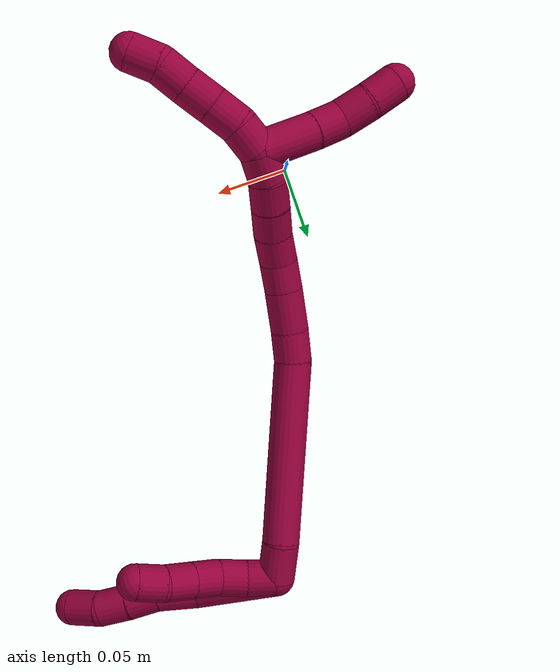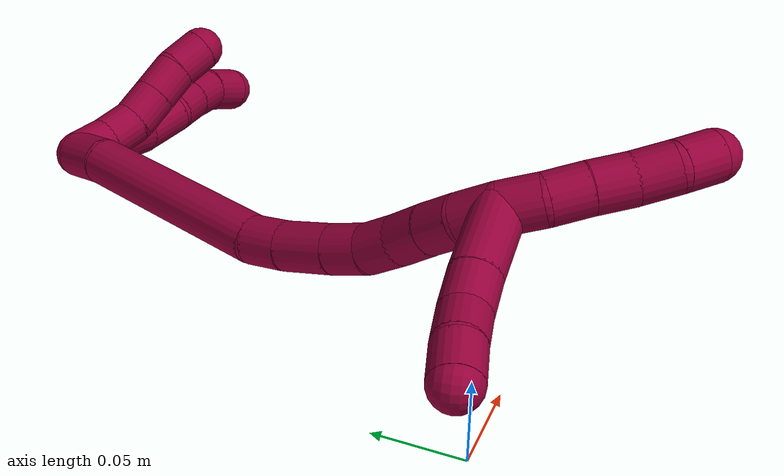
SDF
<sdf version="1.7">
 <world name="default">
  <model name="8">
   <static>0</static>
   <link name="8">
    <collision name="collision-cylinder-e_1_2_8">
     <pose>0.023667 0.01433 -0.007484 -2.05209 0.971529 -1.43352</pose>
     <geometry><cylinder><radius>0.0125</radius><length>0.057323</length></cylinder></geometry>
     <surface>
      <friction><ode><mu>1.16</mu><mu2>1.16</mu2><slip1>0</slip1><slip2>0</slip2></ode></friction>
      <contact><ode><kp>1e+06</kp><kd>1</kd><max_vel>0</max_vel><min_depth>0.001</min_depth></ode></contact>
     </surface>
    </collision>
    <visual name="visual-cylinder-e_1_2_8">
     <pose>0.023667 0.01433 -0.007484 -2.05209 0.971529 -1.43352</pose>
     <geometry><cylinder><radius>0.0125</radius><length>0.057323</length></cylinder></geometry>
     <material><ambient>0.584314 0 0.227451 1</ambient></material>
    </visual>
    <collision name="collision-cylinder-e_2_8_9">
     <pose>0.059833 0.032145 -0.020386 -2.5699 1.09485 -2.24308</pose>
     <geometry><cylinder><radius>0.0125</radius><length>0.028122</length></cylinder></geometry>
     <surface>
      <friction><ode><mu>1.16</mu><mu2>1.16</mu2><slip1>0</slip1><slip2>0</slip2></ode></friction>
      <contact><ode><kp>1e+06</kp><kd>1</kd><max_vel>0</max_vel><min_depth>0.001</min_depth></ode></contact>
     </surface>
    </collision>
    <visual name="visual-cylinder-e_2_8_9">
     <pose>0.059833 0.032145 -0.020386 -2.5699 1.09485 -2.24308</pose>
     <geometry><cylinder><radius>0.0125</radius><length>0.028122</length></cylinder></geometry>
     <material><ambient>0.584314 0 0.227451 1</ambient></material>
    </visual>
    <collision name="collision-cylinder-e_3_9_10">
     <pose>0.081977 0.039751 -0.027443 -1.94954 1.13992 -1.5141</pose>
     <geometry><cylinder><radius>0.0125</radius><length>0.021233</length></cylinder></geometry>
     <surface>
      <friction><ode><mu>1.16</mu><mu2>1.16</mu2><slip1>0</slip1><slip2>0</slip2></ode></friction>
      <contact><ode><kp>1e+06</kp><kd>1</kd><max_vel>0</max_vel><min_depth>0.001</min_depth></ode></contact>
     </surface>
    </collision>
    <visual name="visual-cylinder-e_3_9_10">
     <pose>0.081977 0.039751 -0.027443 -1.94954 1.13992 -1.5141</pose>
     <geometry><cylinder><radius>0.0125</radius><length>0.021233</length></cylinder></geometry>
     <material><ambient>0.584314 0 0.227451 1</ambient></material>
    </visual>
    <collision name="collision-cylinder-e_4_10_11">
     <pose>0.10106 0.048321 -0.03137 -2.04547 1.08322 -1.55624</pose>
     <geometry><cylinder><radius>0.0125</radius><length>0.021361</length></cylinder></geometry>
     <surface>
      <friction><ode><mu>1.16</mu><mu2>1.16</mu2><slip1>0</slip1><slip2>0</slip2></ode></friction>
      <contact><ode><kp>1e+06</kp><kd>1</kd><max_vel>0</max_vel><min_depth>0.001</min_depth></ode></contact>
     </surface>
    </collision>
    <visual name="visual-cylinder-e_4_10_11">
     <pose>0.10106 0.048321 -0.03137 -2.04547 1.08322 -1.55624</pose>
     <geometry><cylinder><radius>0.0125</radius><length>0.021361</length></cylinder></geometry>
     <material><ambient>0.584314 0 0.227451 1</ambient></material>
    </visual>
    <collision name="collision-cylinder-e_5_11_6">
     <pose>0.118114 0.059506 -0.037802 -2.12259 0.766764 -1.25057</pose>
     <geometry><cylinder><radius>0.0125</radius><length>0.02196</length></cylinder></geometry>
     <surface>
      <friction><ode><mu>1.16</mu><mu2>1.16</mu2><slip1>0</slip1><slip2>0</slip2></ode></friction>
      <contact><ode><kp>1e+06</kp><kd>1</kd><max_vel>0</max_vel><min_depth>0.001</min_depth></ode></contact>
     </surface>
    </collision>
    <visual name="visual-cylinder-e_5_11_6">
     <pose>0.118114 0.059506 -0.037802 -2.12259 0.766764 -1.25057</pose>
     <geometry><cylinder><radius>0.0125</radius><length>0.02196</length></cylinder></geometry>
     <material><ambient>0.584314 0 0.227451 1</ambient></material>
    </visual>
    <collision name="collision-cylinder-e_1_2_12">
     <pose>0.008597 0.002515 -0.004445 -2.62675 1.03473 -2.27499</pose>
     <geometry><cylinder><radius>0.0125</radius><length>0.02</length></cylinder></geometry>
     <surface>
      <friction><ode><mu>1.16</mu><mu2>1.16</mu2><slip1>0</slip1><slip2>0</slip2></ode></friction>
      <contact><ode><kp>1e+06</kp><kd>1</kd><max_vel>0</max_vel><min_depth>0.001</min_depth></ode></contact>
     </surface>
    </collision>
    <visual name="visual-cylinder-e_1_2_12">
     <pose>0.008597 0.002515 -0.004445 -2.62675 1.03473 -2.27499</pose>
     <geometry><cylinder><radius>0.0125</radius><length>0.02</length></cylinder></geometry>
     <material><ambient>0.584314 0 0.227451 1</ambient></material>
    </visual>
    <collision name="collision-cylinder-e_2_12_13">
     <pose>0.025746 0.005548 -0.014049 -3.04152 1.02582 -2.96423</pose>
     <geometry><cylinder><radius>0.0125</radius><length>0.02</length></cylinder></geometry>
     <surface>
      <friction><ode><mu>1.16</mu><mu2>1.16</mu2><slip1>0</slip1><slip2>0</slip2></ode></friction>
      <contact><ode><kp>1e+06</kp><kd>1</kd><max_vel>0</max_vel><min_depth>0.001</min_depth></ode></contact>
     </surface>
    </collision>
    <visual name="visual-cylinder-e_2_12_13">
     <pose>0.025746 0.005548 -0.014049 -3.04152 1.02582 -2.96423</pose>
     <geometry><cylinder><radius>0.0125</radius><length>0.02</length></cylinder></geometry>
     <material><ambient>0.584314 0 0.227451 1</ambient></material>
    </visual>
    <collision name="collision-cylinder-e_3_13_14">
     <pose>0.043127 0.003705 -0.023265 2.61467 1.08213 2.29773</pose>
     <geometry><cylinder><radius>0.0125</radius><length>0.02</length></cylinder></geometry>
     <surface>
      <friction><ode><mu>1.16</mu><mu2>1.16</mu2><slip1>0</slip1><slip2>0</slip2></ode></friction>
      <contact><ode><kp>1e+06</kp><kd>1</kd><max_vel>0</max_vel><min_depth>0.001</min_depth></ode></contact>
     </surface>
    </collision>
    <visual name="visual-cylinder-e_3_13_14">
     <pose>0.043127 0.003705 -0.023265 2.61467 1.08213 2.29773</pose>
     <geometry><cylinder><radius>0.0125</radius><length>0.02</length></cylinder></geometry>
     <material><ambient>0.584314 0 0.227451 1</ambient></material>
    </visual>
    <collision name="collision-cylinder-e_4_14_15">
     <pose>0.06077 -0.001107 -0.031361 2.59604 1.07871 2.26717</pose>
     <geometry><cylinder><radius>0.0125</radius><length>0.02</length></cylinder></geometry>
     <surface>
      <friction><ode><mu>1.16</mu><mu2>1.16</mu2><slip1>0</slip1><slip2>0</slip2></ode></friction>
      <contact><ode><kp>1e+06</kp><kd>1</kd><max_vel>0</max_vel><min_depth>0.001</min_depth></ode></contact>
     </surface>
    </collision>
    <visual name="visual-cylinder-e_4_14_15">
     <pose>0.06077 -0.001107 -0.031361 2.59604 1.07871 2.26717</pose>
     <geometry><cylinder><radius>0.0125</radius><length>0.02</length></cylinder></geometry>
     <material><ambient>0.584314 0 0.227451 1</ambient></material>
    </visual>
    <collision name="collision-cylinder-e_5_15_5">
     <pose>0.077992 -0.00448 -0.040734 2.97063 0.998879 2.83002</pose>
     <geometry><cylinder><radius>0.0125</radius><length>0.02</length></cylinder></geometry>
     <surface>
      <friction><ode><mu>1.16</mu><mu2>1.16</mu2><slip1>0</slip1><slip2>0</slip2></ode></friction>
      <contact><ode><kp>1e+06</kp><kd>1</kd><max_vel>0</max_vel><min_depth>0.001</min_depth></ode></contact>
     </surface>
    </collision>
    <visual name="visual-cylinder-e_5_15_5">
     <pose>0.077992 -0.00448 -0.040734 2.97063 0.998879 2.83002</pose>
     <geometry><cylinder><radius>0.0125</radius><length>0.02</length></cylinder></geometry>
     <material><ambient>0.584314 0 0.227451 1</ambient></material>
    </visual>
    <collision name="collision-cylinder-e_1_2_16">
     <pose>-0.006172 -0.005166 -0.010739 2.69327 -0.477865 -1.63689</pose>
     <geometry><cylinder><radius>0.0125</radius><length>0.026841</length></cylinder></geometry>
     <surface>
      <friction><ode><mu>1.16</mu><mu2>1.16</mu2><slip1>0</slip1><slip2>0</slip2></ode></friction>
      <contact><ode><kp>1e+06</kp><kd>1</kd><max_vel>0</max_vel><min_depth>0.001</min_depth></ode></contact>
     </surface>
    </collision>
    <visual name="visual-cylinder-e_1_2_16">
     <pose>-0.006172 -0.005166 -0.010739 2.69327 -0.477865 -1.63689</pose>
     <geometry><cylinder><radius>0.0125</radius><length>0.026841</length></cylinder></geometry>
     <material><ambient>0.584314 0 0.227451 1</ambient></material>
    </visual>
    <collision name="collision-cylinder-e_2_16_17">
     <pose>-0.042225 -0.022243 -0.073739 2.9175 -0.508563 -2.32447</pose>
     <geometry><cylinder><radius>0.0125</radius><length>0.122734</length></cylinder></geometry>
     <surface>
      <friction><ode><mu>1.16</mu><mu2>1.16</mu2><slip1>0</slip1><slip2>0</slip2></ode></friction>
      <contact><ode><kp>1e+06</kp><kd>1</kd><max_vel>0</max_vel><min_depth>0.001</min_depth></ode></contact>
     </surface>
    </collision>
    <visual name="visual-cylinder-e_2_16_17">
     <pose>-0.042225 -0.022243 -0.073739 2.9175 -0.508563 -2.32447</pose>
     <geometry><cylinder><radius>0.0125</radius><length>0.122734</length></cylinder></geometry>
     <material><ambient>0.584314 0 0.227451 1</ambient></material>
    </visual>
    <collision name="collision-cylinder-e_3_17_18">
     <pose>-0.075209 -0.037157 -0.135704 2.84151 -0.296518 -1.55867</pose>
     <geometry><cylinder><radius>0.0125</radius><length>0.021245</length></cylinder></geometry>
     <surface>
      <friction><ode><mu>1.16</mu><mu2>1.16</mu2><slip1>0</slip1><slip2>0</slip2></ode></friction>
      <contact><ode><kp>1e+06</kp><kd>1</kd><max_vel>0</max_vel><min_depth>0.001</min_depth></ode></contact>
     </surface>
    </collision>
    <visual name="visual-cylinder-e_3_17_18">
     <pose>-0.075209 -0.037157 -0.135704 2.84151 -0.296518 -1.55867</pose>
     <geometry><cylinder><radius>0.0125</radius><length>0.021245</length></cylinder></geometry>
     <material><ambient>0.584314 0 0.227451 1</ambient></material>
    </visual>
    <collision name="collision-cylinder-e_4_18_19">
     <pose>-0.081491 -0.045179 -0.158486 2.7751 -0.223068 -1.0872</pose>
     <geometry><cylinder><radius>0.0125</radius><length>0.028726</length></cylinder></geometry>
     <surface>
      <friction><ode><mu>1.16</mu><mu2>1.16</mu2><slip1>0</slip1><slip2>0</slip2></ode></friction>
      <contact><ode><kp>1e+06</kp><kd>1</kd><max_vel>0</max_vel><min_depth>0.001</min_depth></ode></contact>
     </surface>
    </collision>
    <visual name="visual-cylinder-e_4_18_19">
     <pose>-0.081491 -0.045179 -0.158486 2.7751 -0.223068 -1.0872</pose>
     <geometry><cylinder><radius>0.0125</radius><length>0.028726</length></cylinder></geometry>
     <material><ambient>0.584314 0 0.227451 1</ambient></material>
    </visual>
    <collision name="collision-cylinder-e_5_19_20">
     <pose>-0.086431 -0.054116 -0.180626 2.73363 -0.176696 -0.809181</pose>
     <geometry><cylinder><radius>0.0125</radius><length>0.020059</length></cylinder></geometry>
     <surface>
      <friction><ode><mu>1.16</mu><mu2>1.16</mu2><slip1>0</slip1><slip2>0</slip2></ode></friction>
      <contact><ode><kp>1e+06</kp><kd>1</kd><max_vel>0</max_vel><min_depth>0.001</min_depth></ode></contact>
     </surface>
    </collision>
    <visual name="visual-cylinder-e_5_19_20">
     <pose>-0.086431 -0.054116 -0.180626 2.73363 -0.176696 -0.809181</pose>
     <geometry><cylinder><radius>0.0125</radius><length>0.020059</length></cylinder></geometry>
     <material><ambient>0.584314 0 0.227451 1</ambient></material>
    </visual>
    <collision name="collision-cylinder-e_6_20_21">
     <pose>-0.088942 -0.063888 -0.197951 2.52503 -0.07374 -0.230648</pose>
     <geometry><cylinder><radius>0.0125</radius><length>0.020308</length></cylinder></geometry>
     <surface>
      <friction><ode><mu>1.16</mu><mu2>1.16</mu2><slip1>0</slip1><slip2>0</slip2></ode></friction>
      <contact><ode><kp>1e+06</kp><kd>1</kd><max_vel>0</max_vel><min_depth>0.001</min_depth></ode></contact>
     </surface>
    </collision>
    <visual name="visual-cylinder-e_6_20_21">
     <pose>-0.088942 -0.063888 -0.197951 2.52503 -0.07374 -0.230648</pose>
     <geometry><cylinder><radius>0.0125</radius><length>0.020308</length></cylinder></geometry>
     <material><ambient>0.584314 0 0.227451 1</ambient></material>
    </visual>
    <collision name="collision-cylinder-e_7_21_22">
     <pose>-0.090941 -0.076326 -0.213642 2.41653 -0.125398 -0.328066</pose>
     <geometry><cylinder><radius>0.0125</radius><length>0.02001</length></cylinder></geometry>
     <surface>
      <friction><ode><mu>1.16</mu><mu2>1.16</mu2><slip1>0</slip1><slip2>0</slip2></ode></friction>
      <contact><ode><kp>1e+06</kp><kd>1</kd><max_vel>0</max_vel><min_depth>0.001</min_depth></ode></contact>
     </surface>
    </collision>
    <visual name="visual-cylinder-e_7_21_22">
     <pose>-0.090941 -0.076326 -0.213642 2.41653 -0.125398 -0.328066</pose>
     <geometry><cylinder><radius>0.0125</radius><length>0.02001</length></cylinder></geometry>
     <material><ambient>0.584314 0 0.227451 1</ambient></material>
    </visual>
    <collision name="collision-cylinder-e_8_22_23">
     <pose>-0.093506 -0.089197 -0.228783 2.45762 -0.131184 -0.364947</pose>
     <geometry><cylinder><radius>0.0125</radius><length>0.020073</length></cylinder></geometry>
     <surface>
      <friction><ode><mu>1.16</mu><mu2>1.16</mu2><slip1>0</slip1><slip2>0</slip2></ode></friction>
      <contact><ode><kp>1e+06</kp><kd>1</kd><max_vel>0</max_vel><min_depth>0.001</min_depth></ode></contact>
     </surface>
    </collision>
    <visual name="visual-cylinder-e_8_22_23">
     <pose>-0.093506 -0.089197 -0.228783 2.45762 -0.131184 -0.364947</pose>
     <geometry><cylinder><radius>0.0125</radius><length>0.020073</length></cylinder></geometry>
     <material><ambient>0.584314 0 0.227451 1</ambient></material>
    </visual>
    <collision name="collision-cylinder-e_9_23_1">
     <pose>-0.094777 -0.100502 -0.245148 2.61608 0.004088 0.015197</pose>
     <geometry><cylinder><radius>0.0125</radius><length>0.020005</length></cylinder></geometry>
     <surface>
      <friction><ode><mu>1.16</mu><mu2>1.16</mu2><slip1>0</slip1><slip2>0</slip2></ode></friction>
      <contact><ode><kp>1e+06</kp><kd>1</kd><max_vel>0</max_vel><min_depth>0.001</min_depth></ode></contact>
     </surface>
    </collision>
    <visual name="visual-cylinder-e_9_23_1">
     <pose>-0.094777 -0.100502 -0.245148 2.61608 0.004088 0.015197</pose>
     <geometry><cylinder><radius>0.0125</radius><length>0.020005</length></cylinder></geometry>
     <material><ambient>0.584314 0 0.227451 1</ambient></material>
    </visual>
    <collision name="collision-cylinder-e_1_1_24">
     <pose>-0.113626 -0.105201 -0.251833 -0.160496 -1.46561 0.144502</pose>
     <geometry><cylinder><radius>0.0125</radius><length>0.037989</length></cylinder></geometry>
     <surface>
      <friction><ode><mu>1.16</mu><mu2>1.16</mu2><slip1>0</slip1><slip2>0</slip2></ode></friction>
      <contact><ode><kp>1e+06</kp><kd>1</kd><max_vel>0</max_vel><min_depth>0.001</min_depth></ode></contact>
     </surface>
    </collision>
    <visual name="visual-cylinder-e_1_1_24">
     <pose>-0.113626 -0.105201 -0.251833 -0.160496 -1.46561 0.144502</pose>
     <geometry><cylinder><radius>0.0125</radius><length>0.037989</length></cylinder></geometry>
     <material><ambient>0.584314 0 0.227451 1</ambient></material>
    </visual>
    <collision name="collision-cylinder-e_2_24_25">
     <pose>-0.142559 -0.104435 -0.249394 -0.760702 -1.50629 0.717236</pose>
     <geometry><cylinder><radius>0.0125</radius><length>0.020129</length></cylinder></geometry>
     <surface>
      <friction><ode><mu>1.16</mu><mu2>1.16</mu2><slip1>0</slip1><slip2>0</slip2></ode></friction>
      <contact><ode><kp>1e+06</kp><kd>1</kd><max_vel>0</max_vel><min_depth>0.001</min_depth></ode></contact>
     </surface>
    </collision>
    <visual name="visual-cylinder-e_2_24_25">
     <pose>-0.142559 -0.104435 -0.249394 -0.760702 -1.50629 0.717236</pose>
     <geometry><cylinder><radius>0.0125</radius><length>0.020129</length></cylinder></geometry>
     <material><ambient>0.584314 0 0.227451 1</ambient></material>
    </visual>
    <collision name="collision-cylinder-e_3_25_26">
     <pose>-0.162749 -0.106796 -0.249659 1.82666 -1.29207 -1.54709</pose>
     <geometry><cylinder><radius>0.0125</radius><length>0.021106</length></cylinder></geometry>
     <surface>
      <friction><ode><mu>1.16</mu><mu2>1.16</mu2><slip1>0</slip1><slip2>0</slip2></ode></friction>
      <contact><ode><kp>1e+06</kp><kd>1</kd><max_vel>0</max_vel><min_depth>0.001</min_depth></ode></contact>
     </surface>
    </collision>
    <visual name="visual-cylinder-e_3_25_26">
     <pose>-0.162749 -0.106796 -0.249659 1.82666 -1.29207 -1.54709</pose>
     <geometry><cylinder><radius>0.0125</radius><length>0.021106</length></cylinder></geometry>
     <material><ambient>0.584314 0 0.227451 1</ambient></material>
    </visual>
    <collision name="collision-cylinder-e_4_26_4">
     <pose>-0.183124 -0.110858 -0.251694 2.37493 -1.39607 -2.2454</pose>
     <geometry><cylinder><radius>0.0125</radius><length>0.020776</length></cylinder></geometry>
     <surface>
      <friction><ode><mu>1.16</mu><mu2>1.16</mu2><slip1>0</slip1><slip2>0</slip2></ode></friction>
      <contact><ode><kp>1e+06</kp><kd>1</kd><max_vel>0</max_vel><min_depth>0.001</min_depth></ode></contact>
     </surface>
    </collision>
    <visual name="visual-cylinder-e_4_26_4">
     <pose>-0.183124 -0.110858 -0.251694 2.37493 -1.39607 -2.2454</pose>
     <geometry><cylinder><radius>0.0125</radius><length>0.020776</length></cylinder></geometry>
     <material><ambient>0.584314 0 0.227451 1</ambient></material>
    </visual>
    <collision name="collision-cylinder-e_1_1_27">
     <pose>-0.092229 -0.10732 -0.263313 2.95453 0.253466 1.87234</pose>
     <geometry><cylinder><radius>0.0125</radius><length>0.02</length></cylinder></geometry>
     <surface>
      <friction><ode><mu>1.16</mu><mu2>1.16</mu2><slip1>0</slip1><slip2>0</slip2></ode></friction>
      <contact><ode><kp>1e+06</kp><kd>1</kd><max_vel>0</max_vel><min_depth>0.001</min_depth></ode></contact>
     </surface>
    </collision>
    <visual name="visual-cylinder-e_1_1_27">
     <pose>-0.092229 -0.10732 -0.263313 2.95453 0.253466 1.87234</pose>
     <geometry><cylinder><radius>0.0125</radius><length>0.02</length></cylinder></geometry>
     <material><ambient>0.584314 0 0.227451 1</ambient></material>
    </visual>
    <collision name="collision-cylinder-e_2_27_28">
     <pose>-0.08523 -0.109362 -0.281756 3.11458 0.46585 3.02784</pose>
     <geometry><cylinder><radius>0.0125</radius><length>0.02</length></cylinder></geometry>
     <surface>
      <friction><ode><mu>1.16</mu><mu2>1.16</mu2><slip1>0</slip1><slip2>0</slip2></ode></friction>
      <contact><ode><kp>1e+06</kp><kd>1</kd><max_vel>0</max_vel><min_depth>0.001</min_depth></ode></contact>
     </surface>
    </collision>
    <visual name="visual-cylinder-e_2_27_28">
     <pose>-0.08523 -0.109362 -0.281756 3.11458 0.46585 3.02784</pose>
     <geometry><cylinder><radius>0.0125</radius><length>0.02</length></cylinder></geometry>
     <material><ambient>0.584314 0 0.227451 1</ambient></material>
    </visual>
    <collision name="collision-cylinder-e_3_28_29">
     <pose>-0.076321 -0.109298 -0.299653 -3.1076 0.457507 -2.99586</pose>
     <geometry><cylinder><radius>0.0125</radius><length>0.02</length></cylinder></geometry>
     <surface>
      <friction><ode><mu>1.16</mu><mu2>1.16</mu2><slip1>0</slip1><slip2>0</slip2></ode></friction>
      <contact><ode><kp>1e+06</kp><kd>1</kd><max_vel>0</max_vel><min_depth>0.001</min_depth></ode></contact>
     </surface>
    </collision>
    <visual name="visual-cylinder-e_3_28_29">
     <pose>-0.076321 -0.109298 -0.299653 -3.1076 0.457507 -2.99586</pose>
     <geometry><cylinder><radius>0.0125</radius><length>0.02</length></cylinder></geometry>
     <material><ambient>0.584314 0 0.227451 1</ambient></material>
    </visual>
    <collision name="collision-cylinder-e_4_29_30">
     <pose>-0.067507 -0.109612 -0.31758 3.07261 0.455239 2.84584</pose>
     <geometry><cylinder><radius>0.0125</radius><length>0.02</length></cylinder></geometry>
     <surface>
      <friction><ode><mu>1.16</mu><mu2>1.16</mu2><slip1>0</slip1><slip2>0</slip2></ode></friction>
      <contact><ode><kp>1e+06</kp><kd>1</kd><max_vel>0</max_vel><min_depth>0.001</min_depth></ode></contact>
     </surface>
    </collision>
    <visual name="visual-cylinder-e_4_29_30">
     <pose>-0.067507 -0.109612 -0.31758 3.07261 0.455239 2.84584</pose>
     <geometry><cylinder><radius>0.0125</radius><length>0.02</length></cylinder></geometry>
     <material><ambient>0.584314 0 0.227451 1</ambient></material>
    </visual>
    <collision name="collision-cylinder-e_5_30_3">
     <pose>-0.056899 -0.108471 -0.334177 -2.91512 0.670163 -2.51025</pose>
     <geometry><cylinder><radius>0.0125</radius><length>0.02</length></cylinder></geometry>
     <surface>
      <friction><ode><mu>1.16</mu><mu2>1.16</mu2><slip1>0</slip1><slip2>0</slip2></ode></friction>
      <contact><ode><kp>1e+06</kp><kd>1</kd><max_vel>0</max_vel><min_depth>0.001</min_depth></ode></contact>
     </surface>
    </collision>
    <visual name="visual-cylinder-e_5_30_3">
     <pose>-0.056899 -0.108471 -0.334177 -2.91512 0.670163 -2.51025</pose>
     <geometry><cylinder><radius>0.0125</radius><length>0.02</length></cylinder></geometry>
     <material><ambient>0.584314 0 0.227451 1</ambient></material>
    </visual>
    <collision name="collision-sphere-3">
     <pose>-0.050688 -0.106712 -0.341814 0 -0 0</pose>
     <geometry><sphere><radius>0.0125</radius></sphere></geometry>
     <surface>
      <friction><ode><mu>1.16</mu><mu2>1.16</mu2><slip1>0</slip1><slip2>0</slip2></ode></friction>
      <contact><ode><kp>1e+06</kp><kd>1</kd><max_vel>0</max_vel><min_depth>0.001</min_depth></ode></contact>
     </surface>
    </collision>
    <visual name="visual-sphere-3">
     <pose>-0.050688 -0.106712 -0.341814 0 -0 0</pose>
     <geometry><sphere><radius>0.0125</radius></sphere></geometry>
     <material><ambient>0.584314 0 0.227451 1</ambient></material>
    </visual>
    <collision name="collision-sphere-30">
     <pose>-0.06311 -0.110231 -0.32654 0 -0 0</pose>
     <geometry><sphere><radius>0.0125</radius></sphere></geometry>
     <surface>
      <friction><ode><mu>1.16</mu><mu2>1.16</mu2><slip1>0</slip1><slip2>0</slip2></ode></friction>
      <contact><ode><kp>1e+06</kp><kd>1</kd><max_vel>0</max_vel><min_depth>0.001</min_depth></ode></contact>
     </surface>
    </collision>
    <visual name="visual-sphere-30">
     <pose>-0.06311 -0.110231 -0.32654 0 -0 0</pose>
     <geometry><sphere><radius>0.0125</radius></sphere></geometry>
     <material><ambient>0.584314 0 0.227451 1</ambient></material>
    </visual>
    <collision name="collision-sphere-29">
     <pose>-0.071903 -0.108993 -0.30862 0 -0 0</pose>
     <geometry><sphere><radius>0.0125</radius></sphere></geometry>
     <surface>
      <friction><ode><mu>1.16</mu><mu2>1.16</mu2><slip1>0</slip1><slip2>0</slip2></ode></friction>
      <contact><ode><kp>1e+06</kp><kd>1</kd><max_vel>0</max_vel><min_depth>0.001</min_depth></ode></contact>
     </surface>
    </collision>
    <visual name="visual-sphere-29">
     <pose>-0.071903 -0.108993 -0.30862 0 -0 0</pose>
     <geometry><sphere><radius>0.0125</radius></sphere></geometry>
     <material><ambient>0.584314 0 0.227451 1</ambient></material>
    </visual>
    <collision name="collision-sphere-28">
     <pose>-0.080738 -0.109603 -0.290687 0 -0 0</pose>
     <geometry><sphere><radius>0.0125</radius></sphere></geometry>
     <surface>
      <friction><ode><mu>1.16</mu><mu2>1.16</mu2><slip1>0</slip1><slip2>0</slip2></ode></friction>
      <contact><ode><kp>1e+06</kp><kd>1</kd><max_vel>0</max_vel><min_depth>0.001</min_depth></ode></contact>
     </surface>
    </collision>
    <visual name="visual-sphere-28">
     <pose>-0.080738 -0.109603 -0.290687 0 -0 0</pose>
     <geometry><sphere><radius>0.0125</radius></sphere></geometry>
     <material><ambient>0.584314 0 0.227451 1</ambient></material>
    </visual>
    <collision name="collision-sphere-27">
     <pose>-0.089721 -0.10912 -0.272824 0 -0 0</pose>
     <geometry><sphere><radius>0.0125</radius></sphere></geometry>
     <surface>
      <friction><ode><mu>1.16</mu><mu2>1.16</mu2><slip1>0</slip1><slip2>0</slip2></ode></friction>
      <contact><ode><kp>1e+06</kp><kd>1</kd><max_vel>0</max_vel><min_depth>0.001</min_depth></ode></contact>
     </surface>
    </collision>
    <visual name="visual-sphere-27">
     <pose>-0.089721 -0.10912 -0.272824 0 -0 0</pose>
     <geometry><sphere><radius>0.0125</radius></sphere></geometry>
     <material><ambient>0.584314 0 0.227451 1</ambient></material>
    </visual>
    <collision name="collision-sphere-4">
     <pose>-0.193354 -0.112111 -0.252995 0 -0 0</pose>
     <geometry><sphere><radius>0.0125</radius></sphere></geometry>
     <surface>
      <friction><ode><mu>1.16</mu><mu2>1.16</mu2><slip1>0</slip1><slip2>0</slip2></ode></friction>
      <contact><ode><kp>1e+06</kp><kd>1</kd><max_vel>0</max_vel><min_depth>0.001</min_depth></ode></contact>
     </surface>
    </collision>
    <visual name="visual-sphere-4">
     <pose>-0.193354 -0.112111 -0.252995 0 -0 0</pose>
     <geometry><sphere><radius>0.0125</radius></sphere></geometry>
     <material><ambient>0.584314 0 0.227451 1</ambient></material>
    </visual>
    <collision name="collision-sphere-26">
     <pose>-0.172894 -0.109605 -0.250394 0 -0 0</pose>
     <geometry><sphere><radius>0.0125</radius></sphere></geometry>
     <surface>
      <friction><ode><mu>1.16</mu><mu2>1.16</mu2><slip1>0</slip1><slip2>0</slip2></ode></friction>
      <contact><ode><kp>1e+06</kp><kd>1</kd><max_vel>0</max_vel><min_depth>0.001</min_depth></ode></contact>
     </surface>
    </collision>
    <visual name="visual-sphere-26">
     <pose>-0.172894 -0.109605 -0.250394 0 -0 0</pose>
     <geometry><sphere><radius>0.0125</radius></sphere></geometry>
     <material><ambient>0.584314 0 0.227451 1</ambient></material>
    </visual>
    <collision name="collision-sphere-25">
     <pose>-0.152603 -0.103987 -0.248924 0 -0 0</pose>
     <geometry><sphere><radius>0.0125</radius></sphere></geometry>
     <surface>
      <friction><ode><mu>1.16</mu><mu2>1.16</mu2><slip1>0</slip1><slip2>0</slip2></ode></friction>
      <contact><ode><kp>1e+06</kp><kd>1</kd><max_vel>0</max_vel><min_depth>0.001</min_depth></ode></contact>
     </surface>
    </collision>
    <visual name="visual-sphere-25">
     <pose>-0.152603 -0.103987 -0.248924 0 -0 0</pose>
     <geometry><sphere><radius>0.0125</radius></sphere></geometry>
     <material><ambient>0.584314 0 0.227451 1</ambient></material>
    </visual>
    <collision name="collision-sphere-24">
     <pose>-0.132515 -0.104882 -0.249864 0 -0 0</pose>
     <geometry><sphere><radius>0.0125</radius></sphere></geometry>
     <surface>
      <friction><ode><mu>1.16</mu><mu2>1.16</mu2><slip1>0</slip1><slip2>0</slip2></ode></friction>
      <contact><ode><kp>1e+06</kp><kd>1</kd><max_vel>0</max_vel><min_depth>0.001</min_depth></ode></contact>
     </surface>
    </collision>
    <visual name="visual-sphere-24">
     <pose>-0.132515 -0.104882 -0.249864 0 -0 0</pose>
     <geometry><sphere><radius>0.0125</radius></sphere></geometry>
     <material><ambient>0.584314 0 0.227451 1</ambient></material>
    </visual>
    <collision name="collision-sphere-1">
     <pose>-0.094737 -0.10552 -0.253801 0 -0 0</pose>
     <geometry><sphere><radius>0.0125</radius></sphere></geometry>
     <surface>
      <friction><ode><mu>1.16</mu><mu2>1.16</mu2><slip1>0</slip1><slip2>0</slip2></ode></friction>
      <contact><ode><kp>1e+06</kp><kd>1</kd><max_vel>0</max_vel><min_depth>0.001</min_depth></ode></contact>
     </surface>
    </collision>
    <visual name="visual-sphere-1">
     <pose>-0.094737 -0.10552 -0.253801 0 -0 0</pose>
     <geometry><sphere><radius>0.0125</radius></sphere></geometry>
     <material><ambient>0.584314 0 0.227451 1</ambient></material>
    </visual>
    <collision name="collision-sphere-23">
     <pose>-0.094818 -0.095484 -0.236495 0 -0 0</pose>
     <geometry><sphere><radius>0.0125</radius></sphere></geometry>
     <surface>
      <friction><ode><mu>1.16</mu><mu2>1.16</mu2><slip1>0</slip1><slip2>0</slip2></ode></friction>
      <contact><ode><kp>1e+06</kp><kd>1</kd><max_vel>0</max_vel><min_depth>0.001</min_depth></ode></contact>
     </surface>
    </collision>
    <visual name="visual-sphere-23">
     <pose>-0.094818 -0.095484 -0.236495 0 -0 0</pose>
     <geometry><sphere><radius>0.0125</radius></sphere></geometry>
     <material><ambient>0.584314 0 0.227451 1</ambient></material>
    </visual>
    <collision name="collision-sphere-22">
     <pose>-0.092193 -0.082909 -0.221071 0 -0 0</pose>
     <geometry><sphere><radius>0.0125</radius></sphere></geometry>
     <surface>
      <friction><ode><mu>1.16</mu><mu2>1.16</mu2><slip1>0</slip1><slip2>0</slip2></ode></friction>
      <contact><ode><kp>1e+06</kp><kd>1</kd><max_vel>0</max_vel><min_depth>0.001</min_depth></ode></contact>
     </surface>
    </collision>
    <visual name="visual-sphere-22">
     <pose>-0.092193 -0.082909 -0.221071 0 -0 0</pose>
     <geometry><sphere><radius>0.0125</radius></sphere></geometry>
     <material><ambient>0.584314 0 0.227451 1</ambient></material>
    </visual>
    <collision name="collision-sphere-21">
     <pose>-0.08969 -0.069743 -0.206213 0 -0 0</pose>
     <geometry><sphere><radius>0.0125</radius></sphere></geometry>
     <surface>
      <friction><ode><mu>1.16</mu><mu2>1.16</mu2><slip1>0</slip1><slip2>0</slip2></ode></friction>
      <contact><ode><kp>1e+06</kp><kd>1</kd><max_vel>0</max_vel><min_depth>0.001</min_depth></ode></contact>
     </surface>
    </collision>
    <visual name="visual-sphere-21">
     <pose>-0.08969 -0.069743 -0.206213 0 -0 0</pose>
     <geometry><sphere><radius>0.0125</radius></sphere></geometry>
     <material><ambient>0.584314 0 0.227451 1</ambient></material>
    </visual>
    <collision name="collision-sphere-6">
     <pose>0.125732 0.06624 -0.041947 0 -0 0</pose>
     <geometry><sphere><radius>0.0125</radius></sphere></geometry>
     <surface>
      <friction><ode><mu>1.16</mu><mu2>1.16</mu2><slip1>0</slip1><slip2>0</slip2></ode></friction>
      <contact><ode><kp>1e+06</kp><kd>1</kd><max_vel>0</max_vel><min_depth>0.001</min_depth></ode></contact>
     </surface>
    </collision>
    <visual name="visual-sphere-6">
     <pose>0.125732 0.06624 -0.041947 0 -0 0</pose>
     <geometry><sphere><radius>0.0125</radius></sphere></geometry>
     <material><ambient>0.584314 0 0.227451 1</ambient></material>
    </visual>
    <collision name="collision-sphere-11">
     <pose>0.110496 0.052772 -0.033657 0 -0 0</pose>
     <geometry><sphere><radius>0.0125</radius></sphere></geometry>
     <surface>
      <friction><ode><mu>1.16</mu><mu2>1.16</mu2><slip1>0</slip1><slip2>0</slip2></ode></friction>
      <contact><ode><kp>1e+06</kp><kd>1</kd><max_vel>0</max_vel><min_depth>0.001</min_depth></ode></contact>
     </surface>
    </collision>
    <visual name="visual-sphere-11">
     <pose>0.110496 0.052772 -0.033657 0 -0 0</pose>
     <geometry><sphere><radius>0.0125</radius></sphere></geometry>
     <material><ambient>0.584314 0 0.227451 1</ambient></material>
    </visual>
    <collision name="collision-sphere-10">
     <pose>0.091624 0.043871 -0.029083 0 -0 0</pose>
     <geometry><sphere><radius>0.0125</radius></sphere></geometry>
     <surface>
      <friction><ode><mu>1.16</mu><mu2>1.16</mu2><slip1>0</slip1><slip2>0</slip2></ode></friction>
      <contact><ode><kp>1e+06</kp><kd>1</kd><max_vel>0</max_vel><min_depth>0.001</min_depth></ode></contact>
     </surface>
    </collision>
    <visual name="visual-sphere-10">
     <pose>0.091624 0.043871 -0.029083 0 -0 0</pose>
     <geometry><sphere><radius>0.0125</radius></sphere></geometry>
     <material><ambient>0.584314 0 0.227451 1</ambient></material>
    </visual>
    <collision name="collision-sphere-9">
     <pose>0.072331 0.035631 -0.025804 0 -0 0</pose>
     <geometry><sphere><radius>0.0125</radius></sphere></geometry>
     <surface>
      <friction><ode><mu>1.16</mu><mu2>1.16</mu2><slip1>0</slip1><slip2>0</slip2></ode></friction>
      <contact><ode><kp>1e+06</kp><kd>1</kd><max_vel>0</max_vel><min_depth>0.001</min_depth></ode></contact>
     </surface>
    </collision>
    <visual name="visual-sphere-9">
     <pose>0.072331 0.035631 -0.025804 0 -0 0</pose>
     <geometry><sphere><radius>0.0125</radius></sphere></geometry>
     <material><ambient>0.584314 0 0.227451 1</ambient></material>
    </visual>
    <collision name="collision-sphere-2">
     <geometry><sphere><radius>0.0125</radius></sphere></geometry>
     <surface>
      <friction><ode><mu>1.16</mu><mu2>1.16</mu2><slip1>0</slip1><slip2>0</slip2></ode></friction>
      <contact><ode><kp>1e+06</kp><kd>1</kd><max_vel>0</max_vel><min_depth>0.001</min_depth></ode></contact>
     </surface>
    </collision>
    <visual name="visual-sphere-2">
     <geometry><sphere><radius>0.0125</radius></sphere></geometry>
     <material><ambient>0.584314 0 0.227451 1</ambient></material>
    </visual>
    <collision name="collision-sphere-19">
     <pose>-0.084668 -0.050198 -0.171563 0 -0 0</pose>
     <geometry><sphere><radius>0.0125</radius></sphere></geometry>
     <surface>
      <friction><ode><mu>1.16</mu><mu2>1.16</mu2><slip1>0</slip1><slip2>0</slip2></ode></friction>
      <contact><ode><kp>1e+06</kp><kd>1</kd><max_vel>0</max_vel><min_depth>0.001</min_depth></ode></contact>
     </surface>
    </collision>
    <visual name="visual-sphere-19">
     <pose>-0.084668 -0.050198 -0.171563 0 -0 0</pose>
     <geometry><sphere><radius>0.0125</radius></sphere></geometry>
     <material><ambient>0.584314 0 0.227451 1</ambient></material>
    </visual>
    <collision name="collision-sphere-8">
     <pose>0.047334 0.028659 -0.014967 0 -0 0</pose>
     <geometry><sphere><radius>0.0125</radius></sphere></geometry>
     <surface>
      <friction><ode><mu>1.16</mu><mu2>1.16</mu2><slip1>0</slip1><slip2>0</slip2></ode></friction>
      <contact><ode><kp>1e+06</kp><kd>1</kd><max_vel>0</max_vel><min_depth>0.001</min_depth></ode></contact>
     </surface>
    </collision>
    <visual name="visual-sphere-8">
     <pose>0.047334 0.028659 -0.014967 0 -0 0</pose>
     <geometry><sphere><radius>0.0125</radius></sphere></geometry>
     <material><ambient>0.584314 0 0.227451 1</ambient></material>
    </visual>
    <collision name="collision-sphere-12">
     <pose>0.017195 0.00503 -0.008891 0 -0 0</pose>
     <geometry><sphere><radius>0.0125</radius></sphere></geometry>
     <surface>
      <friction><ode><mu>1.16</mu><mu2>1.16</mu2><slip1>0</slip1><slip2>0</slip2></ode></friction>
      <contact><ode><kp>1e+06</kp><kd>1</kd><max_vel>0</max_vel><min_depth>0.001</min_depth></ode></contact>
     </surface>
    </collision>
    <visual name="visual-sphere-12">
     <pose>0.017195 0.00503 -0.008891 0 -0 0</pose>
     <geometry><sphere><radius>0.0125</radius></sphere></geometry>
     <material><ambient>0.584314 0 0.227451 1</ambient></material>
    </visual>
    <collision name="collision-sphere-13">
     <pose>0.034297 0.006066 -0.019207 0 -0 0</pose>
     <geometry><sphere><radius>0.0125</radius></sphere></geometry>
     <surface>
      <friction><ode><mu>1.16</mu><mu2>1.16</mu2><slip1>0</slip1><slip2>0</slip2></ode></friction>
      <contact><ode><kp>1e+06</kp><kd>1</kd><max_vel>0</max_vel><min_depth>0.001</min_depth></ode></contact>
     </surface>
    </collision>
    <visual name="visual-sphere-13">
     <pose>0.034297 0.006066 -0.019207 0 -0 0</pose>
     <geometry><sphere><radius>0.0125</radius></sphere></geometry>
     <material><ambient>0.584314 0 0.227451 1</ambient></material>
    </visual>
    <collision name="collision-sphere-14">
     <pose>0.051957 0.001344 -0.027322 0 -0 0</pose>
     <geometry><sphere><radius>0.0125</radius></sphere></geometry>
     <surface>
      <friction><ode><mu>1.16</mu><mu2>1.16</mu2><slip1>0</slip1><slip2>0</slip2></ode></friction>
      <contact><ode><kp>1e+06</kp><kd>1</kd><max_vel>0</max_vel><min_depth>0.001</min_depth></ode></contact>
     </surface>
    </collision>
    <visual name="visual-sphere-14">
     <pose>0.051957 0.001344 -0.027322 0 -0 0</pose>
     <geometry><sphere><radius>0.0125</radius></sphere></geometry>
     <material><ambient>0.584314 0 0.227451 1</ambient></material>
    </visual>
    <collision name="collision-sphere-15">
     <pose>0.069583 -0.003559 -0.0354 0 -0 0</pose>
     <geometry><sphere><radius>0.0125</radius></sphere></geometry>
     <surface>
      <friction><ode><mu>1.16</mu><mu2>1.16</mu2><slip1>0</slip1><slip2>0</slip2></ode></friction>
      <contact><ode><kp>1e+06</kp><kd>1</kd><max_vel>0</max_vel><min_depth>0.001</min_depth></ode></contact>
     </surface>
    </collision>
    <visual name="visual-sphere-15">
     <pose>0.069583 -0.003559 -0.0354 0 -0 0</pose>
     <geometry><sphere><radius>0.0125</radius></sphere></geometry>
     <material><ambient>0.584314 0 0.227451 1</ambient></material>
    </visual>
    <collision name="collision-sphere-5">
     <pose>0.086401 -0.005401 -0.046067 0 -0 0</pose>
     <geometry><sphere><radius>0.0125</radius></sphere></geometry>
     <surface>
      <friction><ode><mu>1.16</mu><mu2>1.16</mu2><slip1>0</slip1><slip2>0</slip2></ode></friction>
      <contact><ode><kp>1e+06</kp><kd>1</kd><max_vel>0</max_vel><min_depth>0.001</min_depth></ode></contact>
     </surface>
    </collision>
    <visual name="visual-sphere-5">
     <pose>0.086401 -0.005401 -0.046067 0 -0 0</pose>
     <geometry><sphere><radius>0.0125</radius></sphere></geometry>
     <material><ambient>0.584314 0 0.227451 1</ambient></material>
    </visual>
    <collision name="collision-sphere-16">
     <pose>-0.012344 -0.010331 -0.021479 0 -0 0</pose>
     <geometry><sphere><radius>0.0125</radius></sphere></geometry>
     <surface>
      <friction><ode><mu>1.16</mu><mu2>1.16</mu2><slip1>0</slip1><slip2>0</slip2></ode></friction>
      <contact><ode><kp>1e+06</kp><kd>1</kd><max_vel>0</max_vel><min_depth>0.001</min_depth></ode></contact>
     </surface>
    </collision>
    <visual name="visual-sphere-16">
     <pose>-0.012344 -0.010331 -0.021479 0 -0 0</pose>
     <geometry><sphere><radius>0.0125</radius></sphere></geometry>
     <material><ambient>0.584314 0 0.227451 1</ambient></material>
    </visual>
    <collision name="collision-sphere-17">
     <pose>-0.072106 -0.034154 -0.126 0 -0 0</pose>
     <geometry><sphere><radius>0.0125</radius></sphere></geometry>
     <surface>
      <friction><ode><mu>1.16</mu><mu2>1.16</mu2><slip1>0</slip1><slip2>0</slip2></ode></friction>
      <contact><ode><kp>1e+06</kp><kd>1</kd><max_vel>0</max_vel><min_depth>0.001</min_depth></ode></contact>
     </surface>
    </collision>
    <visual name="visual-sphere-17">
     <pose>-0.072106 -0.034154 -0.126 0 -0 0</pose>
     <geometry><sphere><radius>0.0125</radius></sphere></geometry>
     <material><ambient>0.584314 0 0.227451 1</ambient></material>
    </visual>
    <collision name="collision-sphere-18">
     <pose>-0.078313 -0.04016 -0.145409 0 -0 0</pose>
     <geometry><sphere><radius>0.0125</radius></sphere></geometry>
     <surface>
      <friction><ode><mu>1.16</mu><mu2>1.16</mu2><slip1>0</slip1><slip2>0</slip2></ode></friction>
      <contact><ode><kp>1e+06</kp><kd>1</kd><max_vel>0</max_vel><min_depth>0.001</min_depth></ode></contact>
     </surface>
    </collision>
    <visual name="visual-sphere-18">
     <pose>-0.078313 -0.04016 -0.145409 0 -0 0</pose>
     <geometry><sphere><radius>0.0125</radius></sphere></geometry>
     <material><ambient>0.584314 0 0.227451 1</ambient></material>
    </visual>
    <collision name="collision-sphere-20">
     <pose>-0.088194 -0.058033 -0.189689 0 -0 0</pose>
     <geometry><sphere><radius>0.0125</radius></sphere></geometry>
     <surface>
      <friction><ode><mu>1.16</mu><mu2>1.16</mu2><slip1>0</slip1><slip2>0</slip2></ode></friction>
      <contact><ode><kp>1e+06</kp><kd>1</kd><max_vel>0</max_vel><min_depth>0.001</min_depth></ode></contact>
     </surface>
    </collision>
    <visual name="visual-sphere-20">
     <pose>-0.088194 -0.058033 -0.189689 0 -0 0</pose>
     <geometry><sphere><radius>0.0125</radius></sphere></geometry>
     <material><ambient>0.584314 0 0.227451 1</ambient></material>
    </visual>
    <inertial>
     <pose>-0.035402 -0.038896 -0.131421 0 -0 0</pose>
     <mass>0.75</mass>
     <inertia>
      <ixx>-0.000211</ixx>
      <ixy>0</ixy>
      <ixz>0</ixz>
      <iyy>2.7e-05</iyy>
      <iyz>0</iyz>
      <izz>5.3e-05</izz>
     </inertia>
    </inertial>
   </link>
   <pose>0.099945 0.265299 0.045949 -1.59732 -0.238657 0.160118</pose>
  </model>
 </world>
</sdf>
